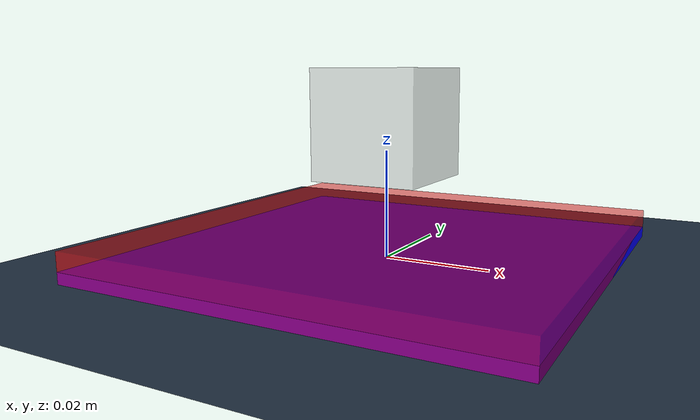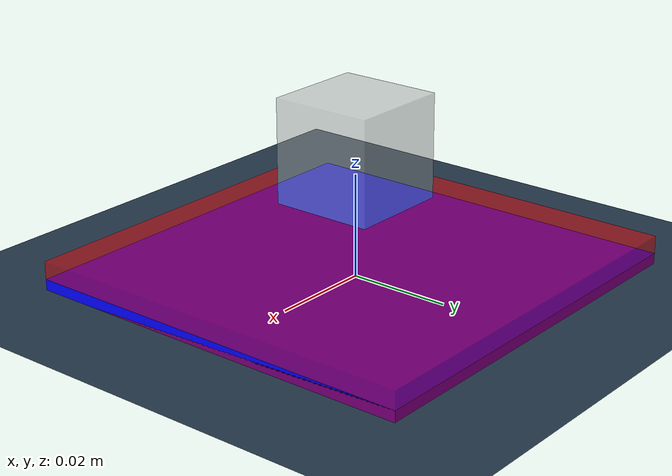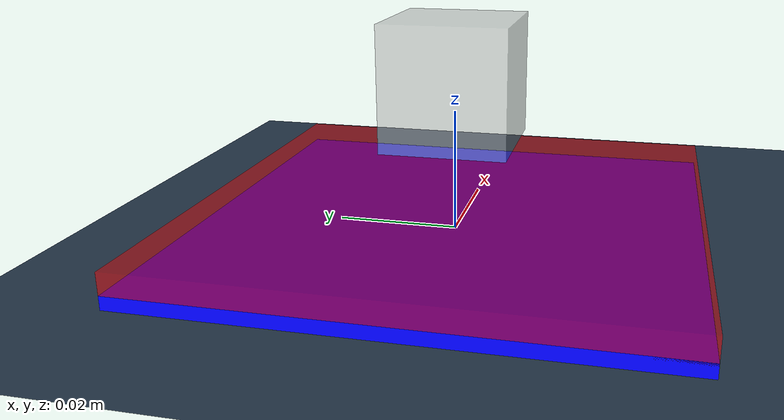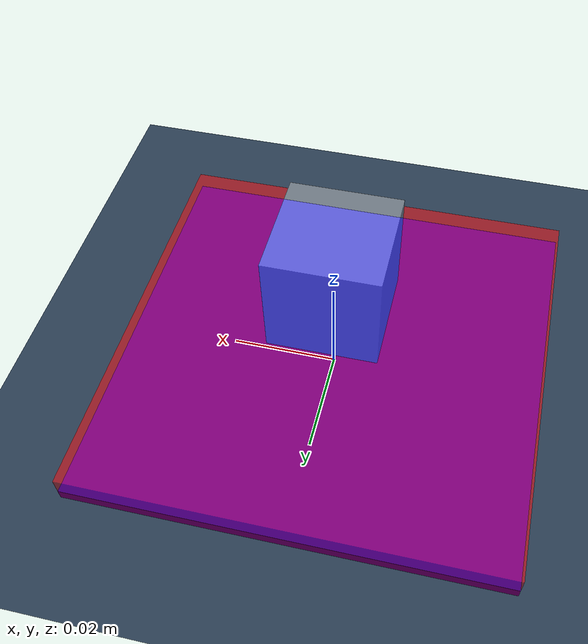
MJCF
<mujoco model="myrmex demo">
  <compiler meshdir="meshes"/>
  <statistic extent="1.5" meansize=".05"/>
  <option timestep="0.001" jacobian="sparse" gravity="0 0 -9.81"/>
  <size nconmax="3000" njmax="4000"/>

  <visual>
    <rgba haze="0.15 0.25 0.35 1"/>
    <quality shadowsize="4096"/>
    <map stiffness="700" shadowscale="0.5" fogstart="10" fogend="15" zfar="40" haze="0.3"/>
    <scale forcewidth="0.001" />
  </visual>

  <asset>
        <texture builtin="checker" height="512" name="texplane" rgb1=".2 .3 .4" rgb2=".1 .15 .2" type="2d" width="512" />
        <material name="MatPlane" reflectance="0.05" shininess="0.01" specular="0.01" texrepeat="1 1" texture="texplane" texuniform="true" />
    </asset>

  <custom>
    <!-- All custom parameters related to contact surfaces have the prefix cs:: -->
    <text name="cs::HydroelasticContactRepresentation" data="kTriangle"/>
    <numeric name="cs::VisualizeSurfaces" data="1"/>
    <!-- If cs::ApplyContactSurfaceForces is 0 Contact Surfaces are only computed for tactile sensors and standard mujoco contacts are used to compute physics -->
    <numeric name="cs::ApplyContactSurfaceForces" data="0"/>
    <numeric name="cs::box1" data="0 1.0 0.05 0.3 0.3"/>
    <numeric name="cs::myrmex_foam_geom" data="1e5 10 0 0.3 0.3"/>

  </custom>

  <worldbody>
    <light directional="true" diffuse=".4 .4 .4" specular="0.1 0.1 0.1" pos="0 0 5.0" dir="0 0 -1" castshadow="false"/>
    <light directional="true" diffuse=".6 .6 .6" specular="0.2 0.2 0.2" pos="0 0 4" dir="0 0 -1"/>
    <geom name="ground" type="plane" size="0 0 1" pos="0 0 0" quat="1 0 0 0" material="MatPlane" condim="1"/>
    <body name="body_box1" pos="0 0 0.025">
      <freejoint/>
      <geom name="box1" type="box"  size="0.01 0.01 0.01" rgba="0.7 0.7 0.7 0.5" mass="11"/>
    </body>
    <body name="body_myrmex" pos="0 0.0 0.0" >

      <body name="myrmex_backplate" pos="0 0 0" euler="-0 0 0">
        <inertial pos="0 0 0" mass="0.005" diaginertia="2e-06 2e-06 1e-06"/>
        <geom name="myrmex_backplate_right" type="box" pos="0 0 0" size="0.04 0.04 0.002" rgba="0 0 1 1"/>

        <body name="myrmex_foam" pos="0 0 0.0025" euler="0 0 0">
            <inertial pos="0 0 0" mass="0.005" diaginertia="2e-06 2e-06 1e-06"/>
            <geom name="myrmex_foam_geom" type="box" pos="0 0 0" size="0.04 0.04 0.003" rgba="1 0 0 0.5"/>
        </body>
    </body>

    </body>
  </worldbody>
</mujoco>
